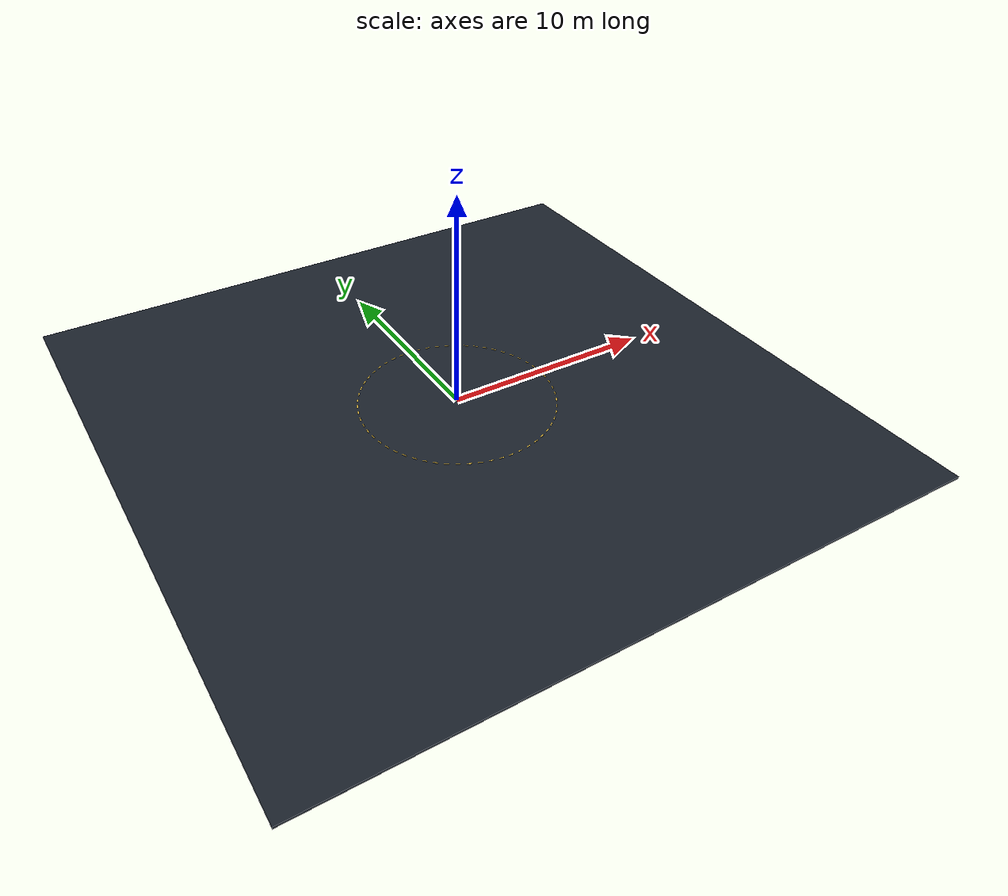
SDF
<sdf version="1.9">
 <world name="loop_course">
  <model name="ground">
   <static>true</static>
   <link name="ground">
    <collision name="ground_collision">
     <pose>0 0 -0.05 0 0 0</pose>
     <geometry><box><size>30 30 0.1</size></box></geometry>
    </collision>
    <visual name="ground_visual">
     <pose>0 0 -0.05 0 0 0</pose>
     <geometry><box><size>30 30 0.1</size></box></geometry>
     <material><ambient>0.105 0.13 0.17 1</ambient><diffuse>0.105 0.13 0.17 1</diffuse></material>
    </visual>
   </link>
  </model>
  <model name="route_markings">
   <static>true</static>
   <link name="paint">
    <visual name="dash_0">
     <pose>4.5 0.0 0.008 0 0 1.5707963267948966</pose>
     <geometry><box><size>0.22 0.055 0.006</size></box></geometry>
     <material><ambient>0.9 0.75 0.28 1</ambient><diffuse>0.9 0.75 0.28 1</diffuse></material>
    </visual>
    <visual name="dash_1">
     <pose>4.4753485291572295 0.47037808470444054 0.008 0 0 1.6755160819145563</pose>
     <geometry><box><size>0.22 0.055 0.006</size></box></geometry>
     <material><ambient>0.9 0.75 0.28 1</ambient><diffuse>0.9 0.75 0.28 1</diffuse></material>
    </visual>
    <visual name="dash_2">
     <pose>4.401664203302126 0.935602608679917 0.008 0 0 1.7802358370342162</pose>
     <geometry><box><size>0.22 0.055 0.006</size></box></geometry>
     <material><ambient>0.9 0.75 0.28 1</ambient><diffuse>0.9 0.75 0.28 1</diffuse></material>
    </visual>
    <visual name="dash_3">
     <pose>4.2797543233281905 1.3905764746872633 0.008 0 0 1.8849555921538759</pose>
     <geometry><box><size>0.22 0.055 0.006</size></box></geometry>
     <material><ambient>0.9 0.75 0.28 1</ambient><diffuse>0.9 0.75 0.28 1</diffuse></material>
    </visual>
    <visual name="dash_4">
     <pose>4.110954559391704 1.8303148938411007 0.008 0 0 1.9896753472735356</pose>
     <geometry><box><size>0.22 0.055 0.006</size></box></geometry>
     <material><ambient>0.9 0.75 0.28 1</ambient><diffuse>0.9 0.75 0.28 1</diffuse></material>
    </visual>
    <visual name="dash_5">
     <pose>3.897114317029974 2.2499999999999996 0.008 0 0 2.0943951023931953</pose>
     <geometry><box><size>0.22 0.055 0.006</size></box></geometry>
     <material><ambient>0.9 0.75 0.28 1</ambient><diffuse>0.9 0.75 0.28 1</diffuse></material>
    </visual>
    <visual name="dash_6">
     <pose>3.6405764746872635 2.6450336353161292 0.008 0 0 2.199114857512855</pose>
     <geometry><box><size>0.22 0.055 0.006</size></box></geometry>
     <material><ambient>0.9 0.75 0.28 1</ambient><diffuse>0.9 0.75 0.28 1</diffuse></material>
    </visual>
    <visual name="dash_7">
     <pose>3.344151714648274 3.011087728614862 0.008 0 0 2.303834612632515</pose>
     <geometry><box><size>0.22 0.055 0.006</size></box></geometry>
     <material><ambient>0.9 0.75 0.28 1</ambient><diffuse>0.9 0.75 0.28 1</diffuse></material>
    </visual>
    <visual name="dash_8">
     <pose>3.011087728614862 3.3441517146482735 0.008 0 0 2.4085543677521746</pose>
     <geometry><box><size>0.22 0.055 0.006</size></box></geometry>
     <material><ambient>0.9 0.75 0.28 1</ambient><diffuse>0.9 0.75 0.28 1</diffuse></material>
    </visual>
    <visual name="dash_9">
     <pose>2.6450336353161292 3.6405764746872635 0.008 0 0 2.5132741228718345</pose>
     <geometry><box><size>0.22 0.055 0.006</size></box></geometry>
     <material><ambient>0.9 0.75 0.28 1</ambient><diffuse>0.9 0.75 0.28 1</diffuse></material>
    </visual>
    <visual name="dash_10">
     <pose>2.2500000000000004 3.8971143170299736 0.008 0 0 2.617993877991494</pose>
     <geometry><box><size>0.22 0.055 0.006</size></box></geometry>
     <material><ambient>0.9 0.75 0.28 1</ambient><diffuse>0.9 0.75 0.28 1</diffuse></material>
    </visual>
    <visual name="dash_11">
     <pose>1.8303148938411016 4.110954559391704 0.008 0 0 2.722713633111154</pose>
     <geometry><box><size>0.22 0.055 0.006</size></box></geometry>
     <material><ambient>0.9 0.75 0.28 1</ambient><diffuse>0.9 0.75 0.28 1</diffuse></material>
    </visual>
    <visual name="dash_12">
     <pose>1.3905764746872635 4.2797543233281905 0.008 0 0 2.827433388230814</pose>
     <geometry><box><size>0.22 0.055 0.006</size></box></geometry>
     <material><ambient>0.9 0.75 0.28 1</ambient><diffuse>0.9 0.75 0.28 1</diffuse></material>
    </visual>
    <visual name="dash_13">
     <pose>0.9356026086799165 4.401664203302126 0.008 0 0 2.9321531433504737</pose>
     <geometry><box><size>0.22 0.055 0.006</size></box></geometry>
     <material><ambient>0.9 0.75 0.28 1</ambient><diffuse>0.9 0.75 0.28 1</diffuse></material>
    </visual>
    <visual name="dash_14">
     <pose>0.47037808470444054 4.4753485291572295 0.008 0 0 3.0368728984701336</pose>
     <geometry><box><size>0.22 0.055 0.006</size></box></geometry>
     <material><ambient>0.9 0.75 0.28 1</ambient><diffuse>0.9 0.75 0.28 1</diffuse></material>
    </visual>
    <visual name="dash_15">
     <pose>1.2747462519707954e-15 4.5 0.008 0 0 3.141592653589793</pose>
     <geometry><box><size>0.22 0.055 0.006</size></box></geometry>
     <material><ambient>0.9 0.75 0.28 1</ambient><diffuse>0.9 0.75 0.28 1</diffuse></material>
    </visual>
    <visual name="dash_16">
     <pose>-0.47037808470444 4.47534852915723 0.008 0 0 3.2463124087094526</pose>
     <geometry><box><size>0.22 0.055 0.006</size></box></geometry>
     <material><ambient>0.9 0.75 0.28 1</ambient><diffuse>0.9 0.75 0.28 1</diffuse></material>
    </visual>
    <visual name="dash_17">
     <pose>-0.9356026086799171 4.401664203302126 0.008 0 0 3.351032163829113</pose>
     <geometry><box><size>0.22 0.055 0.006</size></box></geometry>
     <material><ambient>0.9 0.75 0.28 1</ambient><diffuse>0.9 0.75 0.28 1</diffuse></material>
    </visual>
    <visual name="dash_18">
     <pose>-1.390576474687263 4.279754323328191 0.008 0 0 3.4557519189487724</pose>
     <geometry><box><size>0.22 0.055 0.006</size></box></geometry>
     <material><ambient>0.9 0.75 0.28 1</ambient><diffuse>0.9 0.75 0.28 1</diffuse></material>
    </visual>
    <visual name="dash_19">
     <pose>-1.8303148938411002 4.110954559391704 0.008 0 0 3.560471674068432</pose>
     <geometry><box><size>0.22 0.055 0.006</size></box></geometry>
     <material><ambient>0.9 0.75 0.28 1</ambient><diffuse>0.9 0.75 0.28 1</diffuse></material>
    </visual>
    <visual name="dash_20">
     <pose>-2.249999999999999 3.897114317029974 0.008 0 0 3.665191429188092</pose>
     <geometry><box><size>0.22 0.055 0.006</size></box></geometry>
     <material><ambient>0.9 0.75 0.28 1</ambient><diffuse>0.9 0.75 0.28 1</diffuse></material>
    </visual>
    <visual name="dash_21">
     <pose>-2.645033635316129 3.6405764746872635 0.008 0 0 3.7699111843077517</pose>
     <geometry><box><size>0.22 0.055 0.006</size></box></geometry>
     <material><ambient>0.9 0.75 0.28 1</ambient><diffuse>0.9 0.75 0.28 1</diffuse></material>
    </visual>
    <visual name="dash_22">
     <pose>-3.0110877286148607 3.344151714648275 0.008 0 0 3.874630939427411</pose>
     <geometry><box><size>0.22 0.055 0.006</size></box></geometry>
     <material><ambient>0.9 0.75 0.28 1</ambient><diffuse>0.9 0.75 0.28 1</diffuse></material>
    </visual>
    <visual name="dash_23">
     <pose>-3.344151714648273 3.0110877286148625 0.008 0 0 3.979350694547071</pose>
     <geometry><box><size>0.22 0.055 0.006</size></box></geometry>
     <material><ambient>0.9 0.75 0.28 1</ambient><diffuse>0.9 0.75 0.28 1</diffuse></material>
    </visual>
    <visual name="dash_24">
     <pose>-3.640576474687263 2.6450336353161297 0.008 0 0 4.084070449666731</pose>
     <geometry><box><size>0.22 0.055 0.006</size></box></geometry>
     <material><ambient>0.9 0.75 0.28 1</ambient><diffuse>0.9 0.75 0.28 1</diffuse></material>
    </visual>
    <visual name="dash_25">
     <pose>-3.897114317029974 2.2499999999999996 0.008 0 0 4.188790204786391</pose>
     <geometry><box><size>0.22 0.055 0.006</size></box></geometry>
     <material><ambient>0.9 0.75 0.28 1</ambient><diffuse>0.9 0.75 0.28 1</diffuse></material>
    </visual>
    <visual name="dash_26">
     <pose>-4.110954559391704 1.8303148938411002 0.008 0 0 4.293509959906051</pose>
     <geometry><box><size>0.22 0.055 0.006</size></box></geometry>
     <material><ambient>0.9 0.75 0.28 1</ambient><diffuse>0.9 0.75 0.28 1</diffuse></material>
    </visual>
    <visual name="dash_27">
     <pose>-4.2797543233281905 1.3905764746872638 0.008 0 0 4.39822971502571</pose>
     <geometry><box><size>0.22 0.055 0.006</size></box></geometry>
     <material><ambient>0.9 0.75 0.28 1</ambient><diffuse>0.9 0.75 0.28 1</diffuse></material>
    </visual>
    <visual name="dash_28">
     <pose>-4.401664203302126 0.935602608679917 0.008 0 0 4.502949470145371</pose>
     <geometry><box><size>0.22 0.055 0.006</size></box></geometry>
     <material><ambient>0.9 0.75 0.28 1</ambient><diffuse>0.9 0.75 0.28 1</diffuse></material>
    </visual>
    <visual name="dash_29">
     <pose>-4.47534852915723 0.4703780847044398 0.008 0 0 4.60766922526503</pose>
     <geometry><box><size>0.22 0.055 0.006</size></box></geometry>
     <material><ambient>0.9 0.75 0.28 1</ambient><diffuse>0.9 0.75 0.28 1</diffuse></material>
    </visual>
    <visual name="dash_30">
     <pose>-4.5 2.5494925039415907e-15 0.008 0 0 4.71238898038469</pose>
     <geometry><box><size>0.22 0.055 0.006</size></box></geometry>
     <material><ambient>0.9 0.75 0.28 1</ambient><diffuse>0.9 0.75 0.28 1</diffuse></material>
    </visual>
    <visual name="dash_31">
     <pose>-4.47534852915723 -0.47037808470443876 0.008 0 0 4.817108735504349</pose>
     <geometry><box><size>0.22 0.055 0.006</size></box></geometry>
     <material><ambient>0.9 0.75 0.28 1</ambient><diffuse>0.9 0.75 0.28 1</diffuse></material>
    </visual>
    <visual name="dash_32">
     <pose>-4.401664203302126 -0.9356026086799158 0.008 0 0 4.921828490624009</pose>
     <geometry><box><size>0.22 0.055 0.006</size></box></geometry>
     <material><ambient>0.9 0.75 0.28 1</ambient><diffuse>0.9 0.75 0.28 1</diffuse></material>
    </visual>
    <visual name="dash_33">
     <pose>-4.279754323328191 -1.3905764746872629 0.008 0 0 5.026548245743669</pose>
     <geometry><box><size>0.22 0.055 0.006</size></box></geometry>
     <material><ambient>0.9 0.75 0.28 1</ambient><diffuse>0.9 0.75 0.28 1</diffuse></material>
    </visual>
    <visual name="dash_34">
     <pose>-4.110954559391704 -1.830314893841101 0.008 0 0 5.131268000863329</pose>
     <geometry><box><size>0.22 0.055 0.006</size></box></geometry>
     <material><ambient>0.9 0.75 0.28 1</ambient><diffuse>0.9 0.75 0.28 1</diffuse></material>
    </visual>
    <visual name="dash_35">
     <pose>-3.897114317029975 -2.2499999999999987 0.008 0 0 5.235987755982988</pose>
     <geometry><box><size>0.22 0.055 0.006</size></box></geometry>
     <material><ambient>0.9 0.75 0.28 1</ambient><diffuse>0.9 0.75 0.28 1</diffuse></material>
    </visual>
    <visual name="dash_36">
     <pose>-3.640576474687264 -2.645033635316129 0.008 0 0 5.340707511102648</pose>
     <geometry><box><size>0.22 0.055 0.006</size></box></geometry>
     <material><ambient>0.9 0.75 0.28 1</ambient><diffuse>0.9 0.75 0.28 1</diffuse></material>
    </visual>
    <visual name="dash_37">
     <pose>-3.344151714648274 -3.011087728614862 0.008 0 0 5.445427266222309</pose>
     <geometry><box><size>0.22 0.055 0.006</size></box></geometry>
     <material><ambient>0.9 0.75 0.28 1</ambient><diffuse>0.9 0.75 0.28 1</diffuse></material>
    </visual>
    <visual name="dash_38">
     <pose>-3.011087728614863 -3.344151714648273 0.008 0 0 5.550147021341967</pose>
     <geometry><box><size>0.22 0.055 0.006</size></box></geometry>
     <material><ambient>0.9 0.75 0.28 1</ambient><diffuse>0.9 0.75 0.28 1</diffuse></material>
    </visual>
    <visual name="dash_39">
     <pose>-2.6450336353161297 -3.640576474687263 0.008 0 0 5.654866776461628</pose>
     <geometry><box><size>0.22 0.055 0.006</size></box></geometry>
     <material><ambient>0.9 0.75 0.28 1</ambient><diffuse>0.9 0.75 0.28 1</diffuse></material>
    </visual>
    <visual name="dash_40">
     <pose>-2.2500000000000018 -3.8971143170299727 0.008 0 0 5.759586531581287</pose>
     <geometry><box><size>0.22 0.055 0.006</size></box></geometry>
     <material><ambient>0.9 0.75 0.28 1</ambient><diffuse>0.9 0.75 0.28 1</diffuse></material>
    </visual>
    <visual name="dash_41">
     <pose>-1.830314893841104 -4.110954559391702 0.008 0 0 5.864306286700947</pose>
     <geometry><box><size>0.22 0.055 0.006</size></box></geometry>
     <material><ambient>0.9 0.75 0.28 1</ambient><diffuse>0.9 0.75 0.28 1</diffuse></material>
    </visual>
    <visual name="dash_42">
     <pose>-1.390576474687264 -4.2797543233281905 0.008 0 0 5.969026041820607</pose>
     <geometry><box><size>0.22 0.055 0.006</size></box></geometry>
     <material><ambient>0.9 0.75 0.28 1</ambient><diffuse>0.9 0.75 0.28 1</diffuse></material>
    </visual>
    <visual name="dash_43">
     <pose>-0.9356026086799191 -4.401664203302125 0.008 0 0 6.073745796940266</pose>
     <geometry><box><size>0.22 0.055 0.006</size></box></geometry>
     <material><ambient>0.9 0.75 0.28 1</ambient><diffuse>0.9 0.75 0.28 1</diffuse></material>
    </visual>
    <visual name="dash_44">
     <pose>-0.47037808470444403 -4.4753485291572295 0.008 0 0 6.178465552059926</pose>
     <geometry><box><size>0.22 0.055 0.006</size></box></geometry>
     <material><ambient>0.9 0.75 0.28 1</ambient><diffuse>0.9 0.75 0.28 1</diffuse></material>
    </visual>
    <visual name="dash_45">
     <pose>-8.266365894244633e-16 -4.5 0.008 0 0 6.283185307179586</pose>
     <geometry><box><size>0.22 0.055 0.006</size></box></geometry>
     <material><ambient>0.9 0.75 0.28 1</ambient><diffuse>0.9 0.75 0.28 1</diffuse></material>
    </visual>
    <visual name="dash_46">
     <pose>0.4703780847044384 -4.47534852915723 0.008 0 0 6.387905062299246</pose>
     <geometry><box><size>0.22 0.055 0.006</size></box></geometry>
     <material><ambient>0.9 0.75 0.28 1</ambient><diffuse>0.9 0.75 0.28 1</diffuse></material>
    </visual>
    <visual name="dash_47">
     <pose>0.9356026086799174 -4.401664203302125 0.008 0 0 6.492624817418906</pose>
     <geometry><box><size>0.22 0.055 0.006</size></box></geometry>
     <material><ambient>0.9 0.75 0.28 1</ambient><diffuse>0.9 0.75 0.28 1</diffuse></material>
    </visual>
    <visual name="dash_48">
     <pose>1.3905764746872626 -4.279754323328191 0.008 0 0 6.5973445725385655</pose>
     <geometry><box><size>0.22 0.055 0.006</size></box></geometry>
     <material><ambient>0.9 0.75 0.28 1</ambient><diffuse>0.9 0.75 0.28 1</diffuse></material>
    </visual>
    <visual name="dash_49">
     <pose>1.830314893841099 -4.110954559391705 0.008 0 0 6.702064327658225</pose>
     <geometry><box><size>0.22 0.055 0.006</size></box></geometry>
     <material><ambient>0.9 0.75 0.28 1</ambient><diffuse>0.9 0.75 0.28 1</diffuse></material>
    </visual>
    <visual name="dash_50">
     <pose>2.2500000000000004 -3.8971143170299736 0.008 0 0 6.806784082777885</pose>
     <geometry><box><size>0.22 0.055 0.006</size></box></geometry>
     <material><ambient>0.9 0.75 0.28 1</ambient><diffuse>0.9 0.75 0.28 1</diffuse></material>
    </visual>
    <visual name="dash_51">
     <pose>2.6450336353161283 -3.640576474687264 0.008 0 0 6.911503837897545</pose>
     <geometry><box><size>0.22 0.055 0.006</size></box></geometry>
     <material><ambient>0.9 0.75 0.28 1</ambient><diffuse>0.9 0.75 0.28 1</diffuse></material>
    </visual>
    <visual name="dash_52">
     <pose>3.011087728614863 -3.344151714648273 0.008 0 0 7.016223593017205</pose>
     <geometry><box><size>0.22 0.055 0.006</size></box></geometry>
     <material><ambient>0.9 0.75 0.28 1</ambient><diffuse>0.9 0.75 0.28 1</diffuse></material>
    </visual>
    <visual name="dash_53">
     <pose>3.344151714648274 -3.0110877286148616 0.008 0 0 7.120943348136865</pose>
     <geometry><box><size>0.22 0.055 0.006</size></box></geometry>
     <material><ambient>0.9 0.75 0.28 1</ambient><diffuse>0.9 0.75 0.28 1</diffuse></material>
    </visual>
    <visual name="dash_54">
     <pose>3.640576474687263 -2.64503363531613 0.008 0 0 7.225663103256524</pose>
     <geometry><box><size>0.22 0.055 0.006</size></box></geometry>
     <material><ambient>0.9 0.75 0.28 1</ambient><diffuse>0.9 0.75 0.28 1</diffuse></material>
    </visual>
    <visual name="dash_55">
     <pose>3.897114317029975 -2.2499999999999987 0.008 0 0 7.3303828583761845</pose>
     <geometry><box><size>0.22 0.055 0.006</size></box></geometry>
     <material><ambient>0.9 0.75 0.28 1</ambient><diffuse>0.9 0.75 0.28 1</diffuse></material>
    </visual>
    <visual name="dash_56">
     <pose>4.110954559391704 -1.8303148938411007 0.008 0 0 7.435102613495844</pose>
     <geometry><box><size>0.22 0.055 0.006</size></box></geometry>
     <material><ambient>0.9 0.75 0.28 1</ambient><diffuse>0.9 0.75 0.28 1</diffuse></material>
    </visual>
    <visual name="dash_57">
     <pose>4.2797543233281905 -1.3905764746872642 0.008 0 0 7.5398223686155035</pose>
     <geometry><box><size>0.22 0.055 0.006</size></box></geometry>
     <material><ambient>0.9 0.75 0.28 1</ambient><diffuse>0.9 0.75 0.28 1</diffuse></material>
    </visual>
    <visual name="dash_58">
     <pose>4.401664203302126 -0.9356026086799154 0.008 0 0 7.644542123735164</pose>
     <geometry><box><size>0.22 0.055 0.006</size></box></geometry>
     <material><ambient>0.9 0.75 0.28 1</ambient><diffuse>0.9 0.75 0.28 1</diffuse></material>
    </visual>
    <visual name="dash_59">
     <pose>4.4753485291572295 -0.47037808470444037 0.008 0 0 7.749261878854823</pose>
     <geometry><box><size>0.22 0.055 0.006</size></box></geometry>
     <material><ambient>0.9 0.75 0.28 1</ambient><diffuse>0.9 0.75 0.28 1</diffuse></material>
    </visual>
    <visual name="start_0_0">
     <pose>3.2 -0.25 0.009 0 0 0</pose>
     <geometry><box><size>0.27 0.18 0.008</size></box></geometry>
     <material><ambient>0.025 0.03 0.04 1</ambient><diffuse>0.025 0.03 0.04 1</diffuse></material>
    </visual>
    <visual name="start_0_1">
     <pose>3.47 -0.25 0.009 0 0 0</pose>
     <geometry><box><size>0.27 0.18 0.008</size></box></geometry>
     <material><ambient>0.95 0.95 0.95 1</ambient><diffuse>0.95 0.95 0.95 1</diffuse></material>
    </visual>
    <visual name="start_0_2">
     <pose>3.74 -0.25 0.009 0 0 0</pose>
     <geometry><box><size>0.27 0.18 0.008</size></box></geometry>
     <material><ambient>0.025 0.03 0.04 1</ambient><diffuse>0.025 0.03 0.04 1</diffuse></material>
    </visual>
    <visual name="start_0_3">
     <pose>4.01 -0.25 0.009 0 0 0</pose>
     <geometry><box><size>0.27 0.18 0.008</size></box></geometry>
     <material><ambient>0.95 0.95 0.95 1</ambient><diffuse>0.95 0.95 0.95 1</diffuse></material>
    </visual>
    <visual name="start_0_4">
     <pose>4.28 -0.25 0.009 0 0 0</pose>
     <geometry><box><size>0.27 0.18 0.008</size></box></geometry>
     <material><ambient>0.025 0.03 0.04 1</ambient><diffuse>0.025 0.03 0.04 1</diffuse></material>
    </visual>
    <visual name="start_0_5">
     <pose>4.550000000000001 -0.25 0.009 0 0 0</pose>
     <geometry><box><size>0.27 0.18 0.008</size></box></geometry>
     <material><ambient>0.95 0.95 0.95 1</ambient><diffuse>0.95 0.95 0.95 1</diffuse></material>
    </visual>
    <visual name="start_0_6">
     <pose>4.82 -0.25 0.009 0 0 0</pose>
     <geometry><box><size>0.27 0.18 0.008</size></box></geometry>
     <material><ambient>0.025 0.03 0.04 1</ambient><diffuse>0.025 0.03 0.04 1</diffuse></material>
    </visual>
    <visual name="start_0_7">
     <pose>5.09 -0.25 0.009 0 0 0</pose>
     <geometry><box><size>0.27 0.18 0.008</size></box></geometry>
     <material><ambient>0.95 0.95 0.95 1</ambient><diffuse>0.95 0.95 0.95 1</diffuse></material>
    </visual>
    <visual name="start_0_8">
     <pose>5.36 -0.25 0.009 0 0 0</pose>
     <geometry><box><size>0.27 0.18 0.008</size></box></geometry>
     <material><ambient>0.025 0.03 0.04 1</ambient><diffuse>0.025 0.03 0.04 1</diffuse></material>
    </visual>
    <visual name="start_0_9">
     <pose>5.630000000000001 -0.25 0.009 0 0 0</pose>
     <geometry><box><size>0.27 0.18 0.008</size></box></geometry>
     <material><ambient>0.95 0.95 0.95 1</ambient><diffuse>0.95 0.95 0.95 1</diffuse></material>
    </visual>
    <visual name="start_1_0">
     <pose>3.2 -0.07 0.009 0 0 0</pose>
     <geometry><box><size>0.27 0.18 0.008</size></box></geometry>
     <material><ambient>0.95 0.95 0.95 1</ambient><diffuse>0.95 0.95 0.95 1</diffuse></material>
    </visual>
    <visual name="start_1_1">
     <pose>3.47 -0.07 0.009 0 0 0</pose>
     <geometry><box><size>0.27 0.18 0.008</size></box></geometry>
     <material><ambient>0.025 0.03 0.04 1</ambient><diffuse>0.025 0.03 0.04 1</diffuse></material>
    </visual>
    <visual name="start_1_2">
     <pose>3.74 -0.07 0.009 0 0 0</pose>
     <geometry><box><size>0.27 0.18 0.008</size></box></geometry>
     <material><ambient>0.95 0.95 0.95 1</ambient><diffuse>0.95 0.95 0.95 1</diffuse></material>
    </visual>
    <visual name="start_1_3">
     <pose>4.01 -0.07 0.009 0 0 0</pose>
     <geometry><box><size>0.27 0.18 0.008</size></box></geometry>
     <material><ambient>0.025 0.03 0.04 1</ambient><diffuse>0.025 0.03 0.04 1</diffuse></material>
    </visual>
    <visual name="start_1_4">
     <pose>4.28 -0.07 0.009 0 0 0</pose>
     <geometry><box><size>0.27 0.18 0.008</size></box></geometry>
     <material><ambient>0.95 0.95 0.95 1</ambient><diffuse>0.95 0.95 0.95 1</diffuse></material>
    </visual>
    <visual name="start_1_5">
     <pose>4.550000000000001 -0.07 0.009 0 0 0</pose>
     <geometry><box><size>0.27 0.18 0.008</size></box></geometry>
     <material><ambient>0.025 0.03 0.04 1</ambient><diffuse>0.025 0.03 0.04 1</diffuse></material>
    </visual>
    <visual name="start_1_6">
     <pose>4.82 -0.07 0.009 0 0 0</pose>
     <geometry><box><size>0.27 0.18 0.008</size></box></geometry>
     <material><ambient>0.95 0.95 0.95 1</ambient><diffuse>0.95 0.95 0.95 1</diffuse></material>
    </visual>
    <visual name="start_1_7">
     <pose>5.09 -0.07 0.009 0 0 0</pose>
     <geometry><box><size>0.27 0.18 0.008</size></box></geometry>
     <material><ambient>0.025 0.03 0.04 1</ambient><diffuse>0.025 0.03 0.04 1</diffuse></material>
    </visual>
    <visual name="start_1_8">
     <pose>5.36 -0.07 0.009 0 0 0</pose>
     <geometry><box><size>0.27 0.18 0.008</size></box></geometry>
     <material><ambient>0.95 0.95 0.95 1</ambient><diffuse>0.95 0.95 0.95 1</diffuse></material>
    </visual>
    <visual name="start_1_9">
     <pose>5.630000000000001 -0.07 0.009 0 0 0</pose>
     <geometry><box><size>0.27 0.18 0.008</size></box></geometry>
     <material><ambient>0.025 0.03 0.04 1</ambient><diffuse>0.025 0.03 0.04 1</diffuse></material>
    </visual>
   </link>
  </model>
 </world>
</sdf>
